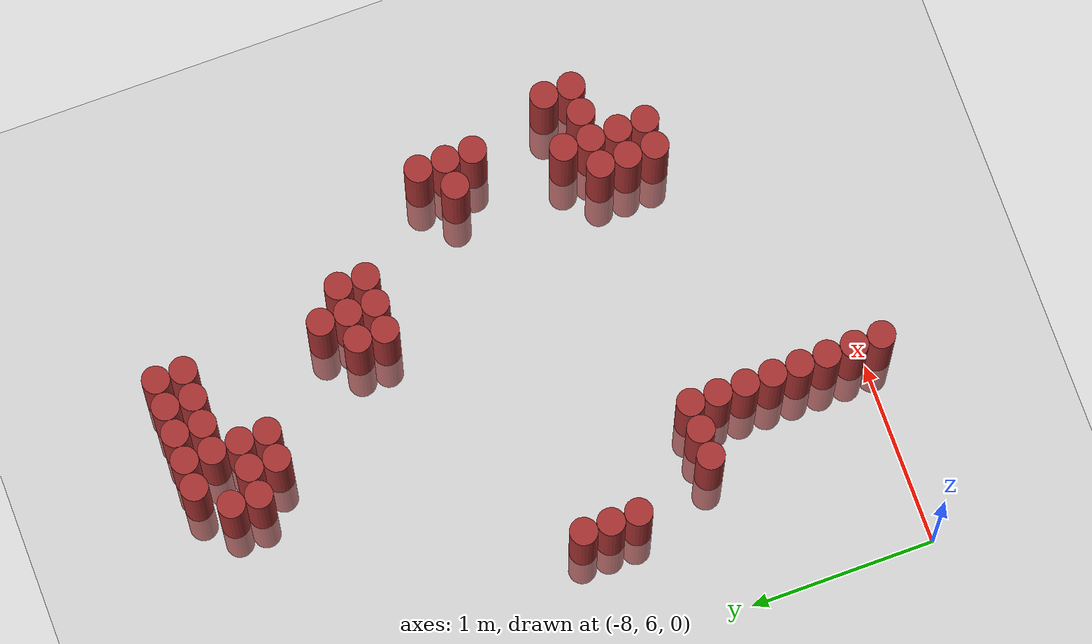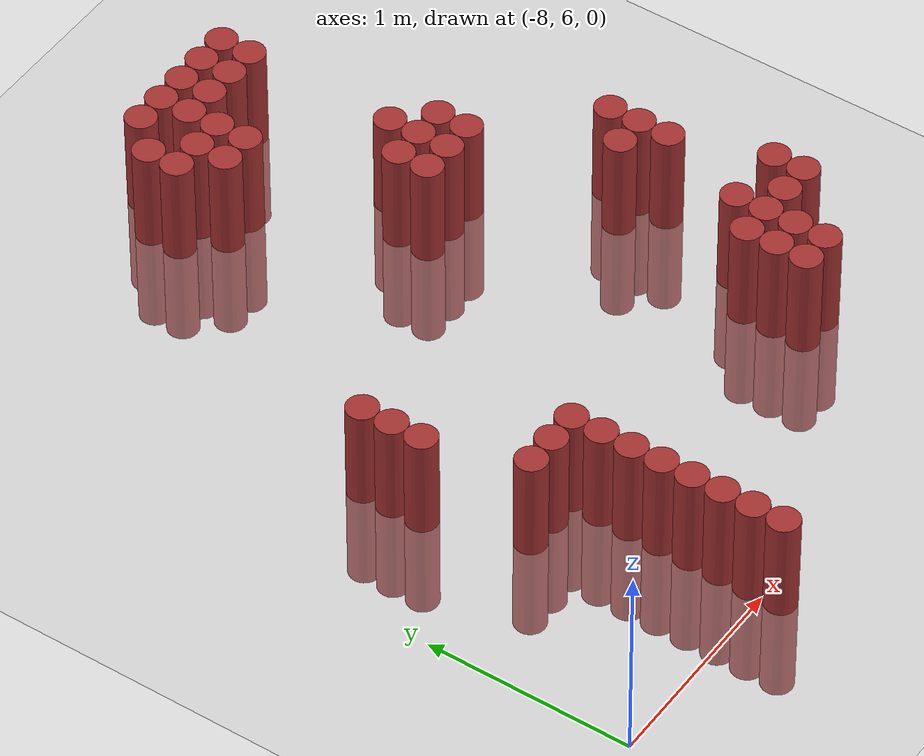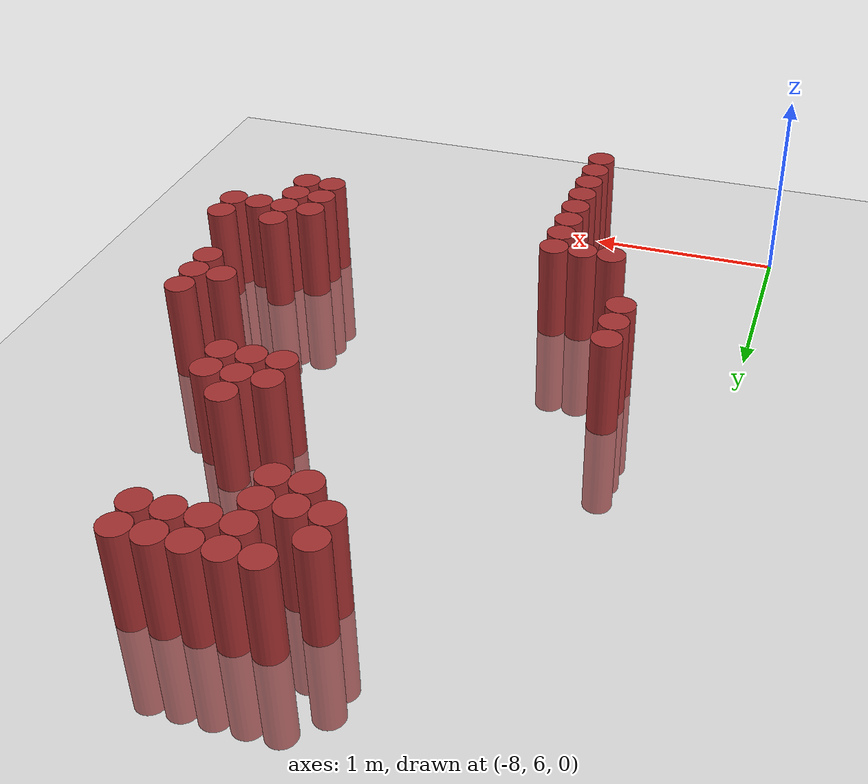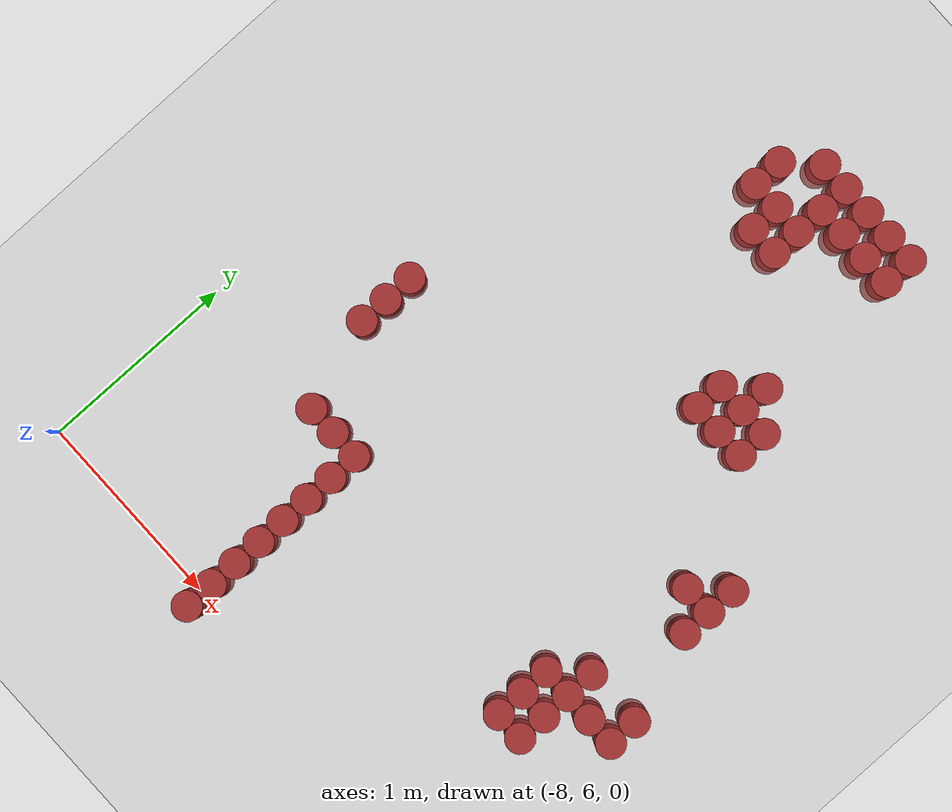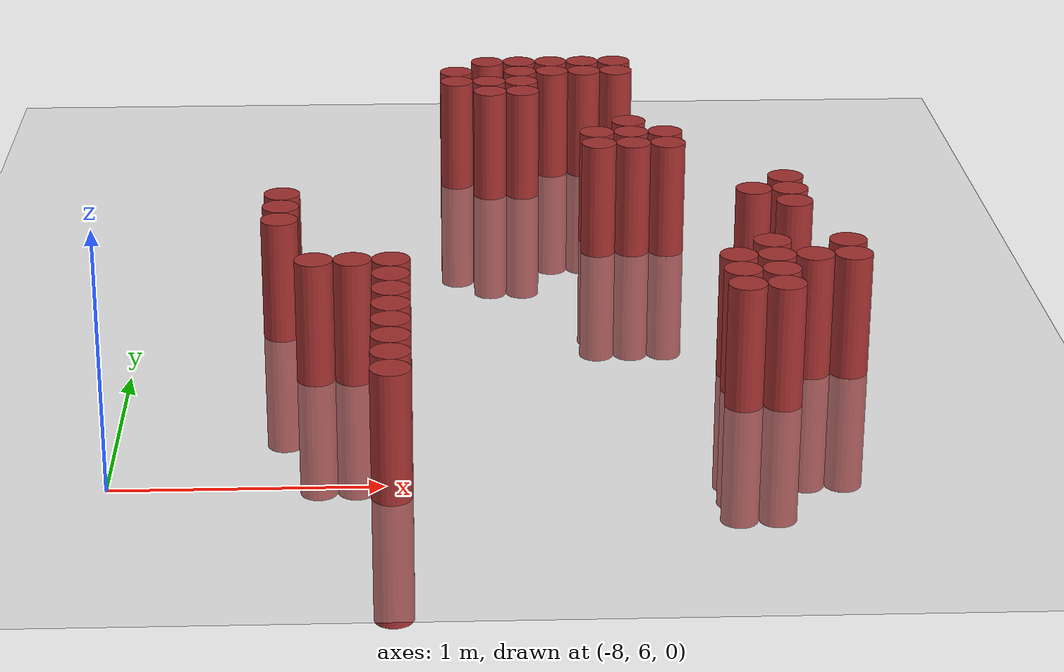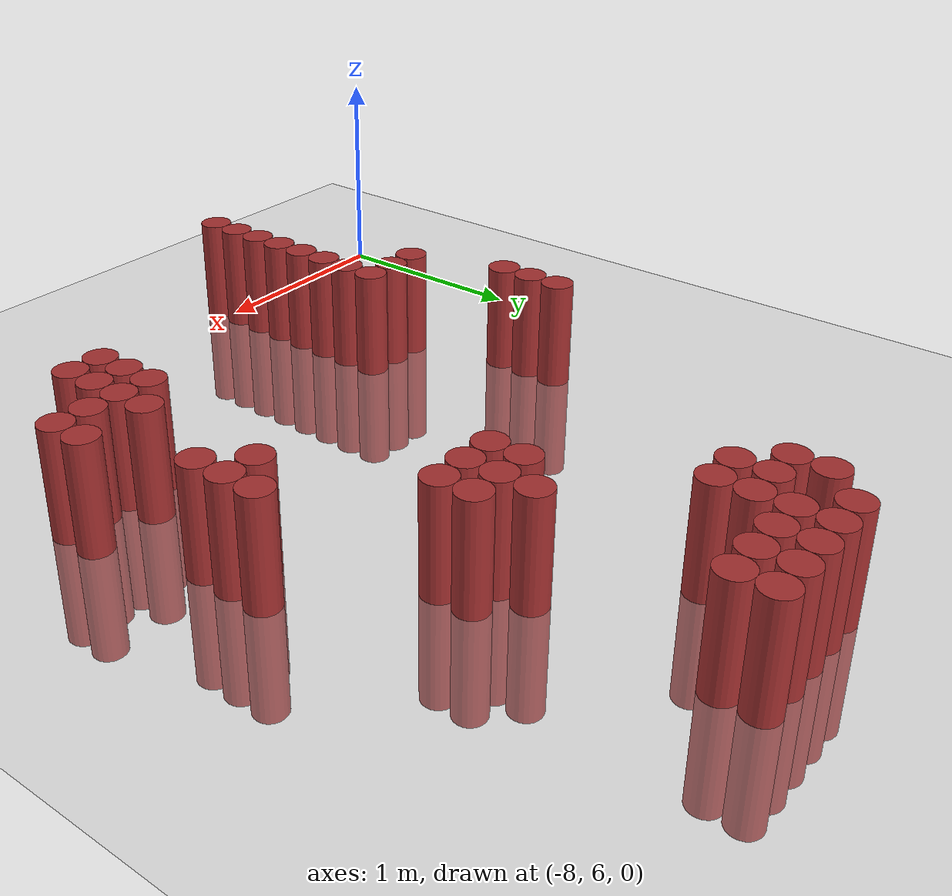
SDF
<sdf version="1.6">
 <world name="default">
  <model name="ground_plane">
   <static>1</static>
   <link name="link">
    <collision name="collision">
     <geometry><plane><normal>0 0 1</normal><size>100 100</size></plane></geometry>
     <surface><friction><ode><mu>100</mu><mu2>50</mu2></ode></friction></surface>
    </collision>
    <visual name="visual">
     <cast_shadows>0</cast_shadows>
     <geometry><plane><normal>0 0 1</normal><size>100 100</size></plane></geometry>
     <material>
      <script><uri>file://media/materials/scripts/gazebo.material</uri><name>Gazebo/Grey</name></script>
     </material>
    </visual>
   </link>
  </model>
  <model name="unit_cylinder_189">
   <static>1</static>
   <pose>-7.425000 7.425000 0.000000 0.000000 0.000000 0.000000</pose>
   <link name="link">
    <inertial>
     <mass>1</mass>
     <inertia><ixx>0.145833</ixx><ixy>0</ixy><ixz>0</ixz><iyy>0.145833</iyy><iyz>0</iyz><izz>0.125</izz></inertia>
    </inertial>
    <collision name="collision">
     <geometry><cylinder><radius>0.075000</radius><length>1</length></cylinder></geometry>
    </collision>
    <visual name="visual">
     <geometry><cylinder><radius>0.075000</radius><length>1</length></cylinder></geometry>
     <material>
      <ambient>0.648000 0.192000 0.192000 1</ambient>
      <diffuse>0.648000 0.192000 0.192000 1</diffuse>
     </material>
     <material>
      <script><name>Gazebo/Grey</name><uri>file://media/materials/scripts/gazebo.material</uri></script>
     </material>
    </visual>
   </link>
  </model>
  <model name="unit_cylinder_190">
   <static>1</static>
   <pose>-7.425000 7.575000 0.000000 0.000000 0.000000 0.000000</pose>
   <link name="link">
    <inertial>
     <mass>1</mass>
     <inertia><ixx>0.145833</ixx><ixy>0</ixy><ixz>0</ixz><iyy>0.145833</iyy><iyz>0</iyz><izz>0.125</izz></inertia>
    </inertial>
    <collision name="collision">
     <geometry><cylinder><radius>0.075000</radius><length>1</length></cylinder></geometry>
    </collision>
    <visual name="visual">
     <geometry><cylinder><radius>0.075000</radius><length>1</length></cylinder></geometry>
     <material>
      <ambient>0.648000 0.192000 0.192000 1</ambient>
      <diffuse>0.648000 0.192000 0.192000 1</diffuse>
     </material>
     <material>
      <script><name>Gazebo/Grey</name><uri>file://media/materials/scripts/gazebo.material</uri></script>
     </material>
    </visual>
   </link>
  </model>
  <model name="unit_cylinder_191">
   <static>1</static>
   <pose>-7.425000 7.725000 0.000000 0.000000 0.000000 0.000000</pose>
   <link name="link">
    <inertial>
     <mass>1</mass>
     <inertia><ixx>0.145833</ixx><ixy>0</ixy><ixz>0</ixz><iyy>0.145833</iyy><iyz>0</iyz><izz>0.125</izz></inertia>
    </inertial>
    <collision name="collision">
     <geometry><cylinder><radius>0.075000</radius><length>1</length></cylinder></geometry>
    </collision>
    <visual name="visual">
     <geometry><cylinder><radius>0.075000</radius><length>1</length></cylinder></geometry>
     <material>
      <ambient>0.648000 0.192000 0.192000 1</ambient>
      <diffuse>0.648000 0.192000 0.192000 1</diffuse>
     </material>
     <material>
      <script><name>Gazebo/Grey</name><uri>file://media/materials/scripts/gazebo.material</uri></script>
     </material>
    </visual>
   </link>
  </model>
  <model name="unit_cylinder_193">
   <static>1</static>
   <pose>-7.275000 6.975000 0.000000 0.000000 0.000000 0.000000</pose>
   <link name="link">
    <inertial>
     <mass>1</mass>
     <inertia><ixx>0.145833</ixx><ixy>0</ixy><ixz>0</ixz><iyy>0.145833</iyy><iyz>0</iyz><izz>0.125</izz></inertia>
    </inertial>
    <collision name="collision">
     <geometry><cylinder><radius>0.075000</radius><length>1</length></cylinder></geometry>
    </collision>
    <visual name="visual">
     <geometry><cylinder><radius>0.075000</radius><length>1</length></cylinder></geometry>
     <material>
      <ambient>0.648000 0.192000 0.192000 1</ambient>
      <diffuse>0.648000 0.192000 0.192000 1</diffuse>
     </material>
     <material>
      <script><name>Gazebo/Grey</name><uri>file://media/materials/scripts/gazebo.material</uri></script>
     </material>
    </visual>
   </link>
  </model>
  <model name="unit_cylinder_195">
   <static>1</static>
   <pose>-7.125000 6.975000 0.000000 0.000000 0.000000 0.000000</pose>
   <link name="link">
    <inertial>
     <mass>1</mass>
     <inertia><ixx>0.145833</ixx><ixy>0</ixy><ixz>0</ixz><iyy>0.145833</iyy><iyz>0</iyz><izz>0.125</izz></inertia>
    </inertial>
    <collision name="collision">
     <geometry><cylinder><radius>0.075000</radius><length>1</length></cylinder></geometry>
    </collision>
    <visual name="visual">
     <geometry><cylinder><radius>0.075000</radius><length>1</length></cylinder></geometry>
     <material>
      <ambient>0.648000 0.192000 0.192000 1</ambient>
      <diffuse>0.648000 0.192000 0.192000 1</diffuse>
     </material>
     <material>
      <script><name>Gazebo/Grey</name><uri>file://media/materials/scripts/gazebo.material</uri></script>
     </material>
    </visual>
   </link>
  </model>
  <model name="unit_cylinder_201">
   <static>1</static>
   <pose>-6.975000 5.925000 0.000000 0.000000 0.000000 0.000000</pose>
   <link name="link">
    <inertial>
     <mass>1</mass>
     <inertia><ixx>0.145833</ixx><ixy>0</ixy><ixz>0</ixz><iyy>0.145833</iyy><iyz>0</iyz><izz>0.125</izz></inertia>
    </inertial>
    <collision name="collision">
     <geometry><cylinder><radius>0.075000</radius><length>1</length></cylinder></geometry>
    </collision>
    <visual name="visual">
     <geometry><cylinder><radius>0.075000</radius><length>1</length></cylinder></geometry>
     <material>
      <ambient>0.648000 0.192000 0.192000 1</ambient>
      <diffuse>0.648000 0.192000 0.192000 1</diffuse>
     </material>
     <material>
      <script><name>Gazebo/Grey</name><uri>file://media/materials/scripts/gazebo.material</uri></script>
     </material>
    </visual>
   </link>
  </model>
  <model name="unit_cylinder_202">
   <static>1</static>
   <pose>-6.975000 6.075000 0.000000 0.000000 0.000000 0.000000</pose>
   <link name="link">
    <inertial>
     <mass>1</mass>
     <inertia><ixx>0.145833</ixx><ixy>0</ixy><ixz>0</ixz><iyy>0.145833</iyy><iyz>0</iyz><izz>0.125</izz></inertia>
    </inertial>
    <collision name="collision">
     <geometry><cylinder><radius>0.075000</radius><length>1</length></cylinder></geometry>
    </collision>
    <visual name="visual">
     <geometry><cylinder><radius>0.075000</radius><length>1</length></cylinder></geometry>
     <material>
      <ambient>0.648000 0.192000 0.192000 1</ambient>
      <diffuse>0.648000 0.192000 0.192000 1</diffuse>
     </material>
     <material>
      <script><name>Gazebo/Grey</name><uri>file://media/materials/scripts/gazebo.material</uri></script>
     </material>
    </visual>
   </link>
  </model>
  <model name="unit_cylinder_203">
   <static>1</static>
   <pose>-6.975000 6.225000 0.000000 0.000000 0.000000 0.000000</pose>
   <link name="link">
    <inertial>
     <mass>1</mass>
     <inertia><ixx>0.145833</ixx><ixy>0</ixy><ixz>0</ixz><iyy>0.145833</iyy><iyz>0</iyz><izz>0.125</izz></inertia>
    </inertial>
    <collision name="collision">
     <geometry><cylinder><radius>0.075000</radius><length>1</length></cylinder></geometry>
    </collision>
    <visual name="visual">
     <geometry><cylinder><radius>0.075000</radius><length>1</length></cylinder></geometry>
     <material>
      <ambient>0.648000 0.192000 0.192000 1</ambient>
      <diffuse>0.648000 0.192000 0.192000 1</diffuse>
     </material>
     <material>
      <script><name>Gazebo/Grey</name><uri>file://media/materials/scripts/gazebo.material</uri></script>
     </material>
    </visual>
   </link>
  </model>
  <model name="unit_cylinder_204">
   <static>1</static>
   <pose>-6.975000 6.375000 0.000000 0.000000 0.000000 0.000000</pose>
   <link name="link">
    <inertial>
     <mass>1</mass>
     <inertia><ixx>0.145833</ixx><ixy>0</ixy><ixz>0</ixz><iyy>0.145833</iyy><iyz>0</iyz><izz>0.125</izz></inertia>
    </inertial>
    <collision name="collision">
     <geometry><cylinder><radius>0.075000</radius><length>1</length></cylinder></geometry>
    </collision>
    <visual name="visual">
     <geometry><cylinder><radius>0.075000</radius><length>1</length></cylinder></geometry>
     <material>
      <ambient>0.648000 0.192000 0.192000 1</ambient>
      <diffuse>0.648000 0.192000 0.192000 1</diffuse>
     </material>
     <material>
      <script><name>Gazebo/Grey</name><uri>file://media/materials/scripts/gazebo.material</uri></script>
     </material>
    </visual>
   </link>
  </model>
  <model name="unit_cylinder_205">
   <static>1</static>
   <pose>-6.975000 6.525000 0.000000 0.000000 0.000000 0.000000</pose>
   <link name="link">
    <inertial>
     <mass>1</mass>
     <inertia><ixx>0.145833</ixx><ixy>0</ixy><ixz>0</ixz><iyy>0.145833</iyy><iyz>0</iyz><izz>0.125</izz></inertia>
    </inertial>
    <collision name="collision">
     <geometry><cylinder><radius>0.075000</radius><length>1</length></cylinder></geometry>
    </collision>
    <visual name="visual">
     <geometry><cylinder><radius>0.075000</radius><length>1</length></cylinder></geometry>
     <material>
      <ambient>0.648000 0.192000 0.192000 1</ambient>
      <diffuse>0.648000 0.192000 0.192000 1</diffuse>
     </material>
     <material>
      <script><name>Gazebo/Grey</name><uri>file://media/materials/scripts/gazebo.material</uri></script>
     </material>
    </visual>
   </link>
  </model>
  <model name="unit_cylinder_206">
   <static>1</static>
   <pose>-6.975000 6.675000 0.000000 0.000000 0.000000 0.000000</pose>
   <link name="link">
    <inertial>
     <mass>1</mass>
     <inertia><ixx>0.145833</ixx><ixy>0</ixy><ixz>0</ixz><iyy>0.145833</iyy><iyz>0</iyz><izz>0.125</izz></inertia>
    </inertial>
    <collision name="collision">
     <geometry><cylinder><radius>0.075000</radius><length>1</length></cylinder></geometry>
    </collision>
    <visual name="visual">
     <geometry><cylinder><radius>0.075000</radius><length>1</length></cylinder></geometry>
     <material>
      <ambient>0.648000 0.192000 0.192000 1</ambient>
      <diffuse>0.648000 0.192000 0.192000 1</diffuse>
     </material>
     <material>
      <script><name>Gazebo/Grey</name><uri>file://media/materials/scripts/gazebo.material</uri></script>
     </material>
    </visual>
   </link>
  </model>
  <model name="unit_cylinder_207">
   <static>1</static>
   <pose>-6.975000 6.825000 0.000000 0.000000 0.000000 0.000000</pose>
   <link name="link">
    <inertial>
     <mass>1</mass>
     <inertia><ixx>0.145833</ixx><ixy>0</ixy><ixz>0</ixz><iyy>0.145833</iyy><iyz>0</iyz><izz>0.125</izz></inertia>
    </inertial>
    <collision name="collision">
     <geometry><cylinder><radius>0.075000</radius><length>1</length></cylinder></geometry>
    </collision>
    <visual name="visual">
     <geometry><cylinder><radius>0.075000</radius><length>1</length></cylinder></geometry>
     <material>
      <ambient>0.648000 0.192000 0.192000 1</ambient>
      <diffuse>0.648000 0.192000 0.192000 1</diffuse>
     </material>
     <material>
      <script><name>Gazebo/Grey</name><uri>file://media/materials/scripts/gazebo.material</uri></script>
     </material>
    </visual>
   </link>
  </model>
  <model name="unit_cylinder_208">
   <static>1</static>
   <pose>-6.975000 6.975000 0.000000 0.000000 0.000000 0.000000</pose>
   <link name="link">
    <inertial>
     <mass>1</mass>
     <inertia><ixx>0.145833</ixx><ixy>0</ixy><ixz>0</ixz><iyy>0.145833</iyy><iyz>0</iyz><izz>0.125</izz></inertia>
    </inertial>
    <collision name="collision">
     <geometry><cylinder><radius>0.075000</radius><length>1</length></cylinder></geometry>
    </collision>
    <visual name="visual">
     <geometry><cylinder><radius>0.075000</radius><length>1</length></cylinder></geometry>
     <material>
      <ambient>0.648000 0.192000 0.192000 1</ambient>
      <diffuse>0.648000 0.192000 0.192000 1</diffuse>
     </material>
     <material>
      <script><name>Gazebo/Grey</name><uri>file://media/materials/scripts/gazebo.material</uri></script>
     </material>
    </visual>
   </link>
  </model>
  <model name="unit_cylinder_213">
   <static>1</static>
   <pose>-6.675000 9.225000 0.000000 0.000000 0.000000 0.000000</pose>
   <link name="link">
    <inertial>
     <mass>1</mass>
     <inertia><ixx>0.145833</ixx><ixy>0</ixy><ixz>0</ixz><iyy>0.145833</iyy><iyz>0</iyz><izz>0.125</izz></inertia>
    </inertial>
    <collision name="collision">
     <geometry><cylinder><radius>0.075000</radius><length>1</length></cylinder></geometry>
    </collision>
    <visual name="visual">
     <geometry><cylinder><radius>0.075000</radius><length>1</length></cylinder></geometry>
     <material>
      <ambient>0.648000 0.192000 0.192000 1</ambient>
      <diffuse>0.648000 0.192000 0.192000 1</diffuse>
     </material>
     <material>
      <script><name>Gazebo/Grey</name><uri>file://media/materials/scripts/gazebo.material</uri></script>
     </material>
    </visual>
   </link>
  </model>
  <model name="unit_cylinder_214">
   <static>1</static>
   <pose>-6.675000 9.375000 0.000000 0.000000 0.000000 0.000000</pose>
   <link name="link">
    <inertial>
     <mass>1</mass>
     <inertia><ixx>0.145833</ixx><ixy>0</ixy><ixz>0</ixz><iyy>0.145833</iyy><iyz>0</iyz><izz>0.125</izz></inertia>
    </inertial>
    <collision name="collision">
     <geometry><cylinder><radius>0.075000</radius><length>1</length></cylinder></geometry>
    </collision>
    <visual name="visual">
     <geometry><cylinder><radius>0.075000</radius><length>1</length></cylinder></geometry>
     <material>
      <ambient>0.648000 0.192000 0.192000 1</ambient>
      <diffuse>0.648000 0.192000 0.192000 1</diffuse>
     </material>
     <material>
      <script><name>Gazebo/Grey</name><uri>file://media/materials/scripts/gazebo.material</uri></script>
     </material>
    </visual>
   </link>
  </model>
  <model name="unit_cylinder_217">
   <static>1</static>
   <pose>-6.525000 9.075000 0.000000 0.000000 0.000000 0.000000</pose>
   <link name="link">
    <inertial>
     <mass>1</mass>
     <inertia><ixx>0.145833</ixx><ixy>0</ixy><ixz>0</ixz><iyy>0.145833</iyy><iyz>0</iyz><izz>0.125</izz></inertia>
    </inertial>
    <collision name="collision">
     <geometry><cylinder><radius>0.075000</radius><length>1</length></cylinder></geometry>
    </collision>
    <visual name="visual">
     <geometry><cylinder><radius>0.075000</radius><length>1</length></cylinder></geometry>
     <material>
      <ambient>0.648000 0.192000 0.192000 1</ambient>
      <diffuse>0.648000 0.192000 0.192000 1</diffuse>
     </material>
     <material>
      <script><name>Gazebo/Grey</name><uri>file://media/materials/scripts/gazebo.material</uri></script>
     </material>
    </visual>
   </link>
  </model>
  <model name="unit_cylinder_218">
   <static>1</static>
   <pose>-6.525000 9.225000 0.000000 0.000000 0.000000 0.000000</pose>
   <link name="link">
    <inertial>
     <mass>1</mass>
     <inertia><ixx>0.145833</ixx><ixy>0</ixy><ixz>0</ixz><iyy>0.145833</iyy><iyz>0</iyz><izz>0.125</izz></inertia>
    </inertial>
    <collision name="collision">
     <geometry><cylinder><radius>0.075000</radius><length>1</length></cylinder></geometry>
    </collision>
    <visual name="visual">
     <geometry><cylinder><radius>0.075000</radius><length>1</length></cylinder></geometry>
     <material>
      <ambient>0.648000 0.192000 0.192000 1</ambient>
      <diffuse>0.648000 0.192000 0.192000 1</diffuse>
     </material>
     <material>
      <script><name>Gazebo/Grey</name><uri>file://media/materials/scripts/gazebo.material</uri></script>
     </material>
    </visual>
   </link>
  </model>
  <model name="unit_cylinder_219">
   <static>1</static>
   <pose>-6.525000 9.525000 0.000000 0.000000 0.000000 0.000000</pose>
   <link name="link">
    <inertial>
     <mass>1</mass>
     <inertia><ixx>0.145833</ixx><ixy>0</ixy><ixz>0</ixz><iyy>0.145833</iyy><iyz>0</iyz><izz>0.125</izz></inertia>
    </inertial>
    <collision name="collision">
     <geometry><cylinder><radius>0.075000</radius><length>1</length></cylinder></geometry>
    </collision>
    <visual name="visual">
     <geometry><cylinder><radius>0.075000</radius><length>1</length></cylinder></geometry>
     <material>
      <ambient>0.648000 0.192000 0.192000 1</ambient>
      <diffuse>0.648000 0.192000 0.192000 1</diffuse>
     </material>
     <material>
      <script><name>Gazebo/Grey</name><uri>file://media/materials/scripts/gazebo.material</uri></script>
     </material>
    </visual>
   </link>
  </model>
  <model name="unit_cylinder_222">
   <static>1</static>
   <pose>-6.375000 9.075000 0.000000 0.000000 0.000000 0.000000</pose>
   <link name="link">
    <inertial>
     <mass>1</mass>
     <inertia><ixx>0.145833</ixx><ixy>0</ixy><ixz>0</ixz><iyy>0.145833</iyy><iyz>0</iyz><izz>0.125</izz></inertia>
    </inertial>
    <collision name="collision">
     <geometry><cylinder><radius>0.075000</radius><length>1</length></cylinder></geometry>
    </collision>
    <visual name="visual">
     <geometry><cylinder><radius>0.075000</radius><length>1</length></cylinder></geometry>
     <material>
      <ambient>0.648000 0.192000 0.192000 1</ambient>
      <diffuse>0.648000 0.192000 0.192000 1</diffuse>
     </material>
     <material>
      <script><name>Gazebo/Grey</name><uri>file://media/materials/scripts/gazebo.material</uri></script>
     </material>
    </visual>
   </link>
  </model>
  <model name="unit_cylinder_223">
   <static>1</static>
   <pose>-6.375000 9.225000 0.000000 0.000000 0.000000 0.000000</pose>
   <link name="link">
    <inertial>
     <mass>1</mass>
     <inertia><ixx>0.145833</ixx><ixy>0</ixy><ixz>0</ixz><iyy>0.145833</iyy><iyz>0</iyz><izz>0.125</izz></inertia>
    </inertial>
    <collision name="collision">
     <geometry><cylinder><radius>0.075000</radius><length>1</length></cylinder></geometry>
    </collision>
    <visual name="visual">
     <geometry><cylinder><radius>0.075000</radius><length>1</length></cylinder></geometry>
     <material>
      <ambient>0.648000 0.192000 0.192000 1</ambient>
      <diffuse>0.648000 0.192000 0.192000 1</diffuse>
     </material>
     <material>
      <script><name>Gazebo/Grey</name><uri>file://media/materials/scripts/gazebo.material</uri></script>
     </material>
    </visual>
   </link>
  </model>
  <model name="unit_cylinder_224">
   <static>1</static>
   <pose>-6.375000 9.375000 0.000000 0.000000 0.000000 0.000000</pose>
   <link name="link">
    <inertial>
     <mass>1</mass>
     <inertia><ixx>0.145833</ixx><ixy>0</ixy><ixz>0</ixz><iyy>0.145833</iyy><iyz>0</iyz><izz>0.125</izz></inertia>
    </inertial>
    <collision name="collision">
     <geometry><cylinder><radius>0.075000</radius><length>1</length></cylinder></geometry>
    </collision>
    <visual name="visual">
     <geometry><cylinder><radius>0.075000</radius><length>1</length></cylinder></geometry>
     <material>
      <ambient>0.648000 0.192000 0.192000 1</ambient>
      <diffuse>0.648000 0.192000 0.192000 1</diffuse>
     </material>
     <material>
      <script><name>Gazebo/Grey</name><uri>file://media/materials/scripts/gazebo.material</uri></script>
     </material>
    </visual>
   </link>
  </model>
  <model name="unit_cylinder_225">
   <static>1</static>
   <pose>-6.375000 9.525000 0.000000 0.000000 0.000000 0.000000</pose>
   <link name="link">
    <inertial>
     <mass>1</mass>
     <inertia><ixx>0.145833</ixx><ixy>0</ixy><ixz>0</ixz><iyy>0.145833</iyy><iyz>0</iyz><izz>0.125</izz></inertia>
    </inertial>
    <collision name="collision">
     <geometry><cylinder><radius>0.075000</radius><length>1</length></cylinder></geometry>
    </collision>
    <visual name="visual">
     <geometry><cylinder><radius>0.075000</radius><length>1</length></cylinder></geometry>
     <material>
      <ambient>0.648000 0.192000 0.192000 1</ambient>
      <diffuse>0.648000 0.192000 0.192000 1</diffuse>
     </material>
     <material>
      <script><name>Gazebo/Grey</name><uri>file://media/materials/scripts/gazebo.material</uri></script>
     </material>
    </visual>
   </link>
  </model>
  <model name="unit_cylinder_228">
   <static>1</static>
   <pose>-6.225000 9.375000 0.000000 0.000000 0.000000 0.000000</pose>
   <link name="link">
    <inertial>
     <mass>1</mass>
     <inertia><ixx>0.145833</ixx><ixy>0</ixy><ixz>0</ixz><iyy>0.145833</iyy><iyz>0</iyz><izz>0.125</izz></inertia>
    </inertial>
    <collision name="collision">
     <geometry><cylinder><radius>0.075000</radius><length>1</length></cylinder></geometry>
    </collision>
    <visual name="visual">
     <geometry><cylinder><radius>0.075000</radius><length>1</length></cylinder></geometry>
     <material>
      <ambient>0.648000 0.192000 0.192000 1</ambient>
      <diffuse>0.648000 0.192000 0.192000 1</diffuse>
     </material>
     <material>
      <script><name>Gazebo/Grey</name><uri>file://media/materials/scripts/gazebo.material</uri></script>
     </material>
    </visual>
   </link>
  </model>
  <model name="unit_cylinder_229">
   <static>1</static>
   <pose>-6.225000 9.525000 0.000000 0.000000 0.000000 0.000000</pose>
   <link name="link">
    <inertial>
     <mass>1</mass>
     <inertia><ixx>0.145833</ixx><ixy>0</ixy><ixz>0</ixz><iyy>0.145833</iyy><iyz>0</iyz><izz>0.125</izz></inertia>
    </inertial>
    <collision name="collision">
     <geometry><cylinder><radius>0.075000</radius><length>1</length></cylinder></geometry>
    </collision>
    <visual name="visual">
     <geometry><cylinder><radius>0.075000</radius><length>1</length></cylinder></geometry>
     <material>
      <ambient>0.648000 0.192000 0.192000 1</ambient>
      <diffuse>0.648000 0.192000 0.192000 1</diffuse>
     </material>
     <material>
      <script><name>Gazebo/Grey</name><uri>file://media/materials/scripts/gazebo.material</uri></script>
     </material>
    </visual>
   </link>
  </model>
  <model name="unit_cylinder_232">
   <static>1</static>
   <pose>-6.075000 8.325000 0.000000 0.000000 0.000000 0.000000</pose>
   <link name="link">
    <inertial>
     <mass>1</mass>
     <inertia><ixx>0.145833</ixx><ixy>0</ixy><ixz>0</ixz><iyy>0.145833</iyy><iyz>0</iyz><izz>0.125</izz></inertia>
    </inertial>
    <collision name="collision">
     <geometry><cylinder><radius>0.075000</radius><length>1</length></cylinder></geometry>
    </collision>
    <visual name="visual">
     <geometry><cylinder><radius>0.075000</radius><length>1</length></cylinder></geometry>
     <material>
      <ambient>0.648000 0.192000 0.192000 1</ambient>
      <diffuse>0.648000 0.192000 0.192000 1</diffuse>
     </material>
     <material>
      <script><name>Gazebo/Grey</name><uri>file://media/materials/scripts/gazebo.material</uri></script>
     </material>
    </visual>
   </link>
  </model>
  <model name="unit_cylinder_233">
   <static>1</static>
   <pose>-6.075000 8.475000 0.000000 0.000000 0.000000 0.000000</pose>
   <link name="link">
    <inertial>
     <mass>1</mass>
     <inertia><ixx>0.145833</ixx><ixy>0</ixy><ixz>0</ixz><iyy>0.145833</iyy><iyz>0</iyz><izz>0.125</izz></inertia>
    </inertial>
    <collision name="collision">
     <geometry><cylinder><radius>0.075000</radius><length>1</length></cylinder></geometry>
    </collision>
    <visual name="visual">
     <geometry><cylinder><radius>0.075000</radius><length>1</length></cylinder></geometry>
     <material>
      <ambient>0.648000 0.192000 0.192000 1</ambient>
      <diffuse>0.648000 0.192000 0.192000 1</diffuse>
     </material>
     <material>
      <script><name>Gazebo/Grey</name><uri>file://media/materials/scripts/gazebo.material</uri></script>
     </material>
    </visual>
   </link>
  </model>
  <model name="unit_cylinder_234">
   <static>1</static>
   <pose>-6.075000 9.375000 0.000000 0.000000 0.000000 0.000000</pose>
   <link name="link">
    <inertial>
     <mass>1</mass>
     <inertia><ixx>0.145833</ixx><ixy>0</ixy><ixz>0</ixz><iyy>0.145833</iyy><iyz>0</iyz><izz>0.125</izz></inertia>
    </inertial>
    <collision name="collision">
     <geometry><cylinder><radius>0.075000</radius><length>1</length></cylinder></geometry>
    </collision>
    <visual name="visual">
     <geometry><cylinder><radius>0.075000</radius><length>1</length></cylinder></geometry>
     <material>
      <ambient>0.648000 0.192000 0.192000 1</ambient>
      <diffuse>0.648000 0.192000 0.192000 1</diffuse>
     </material>
     <material>
      <script><name>Gazebo/Grey</name><uri>file://media/materials/scripts/gazebo.material</uri></script>
     </material>
    </visual>
   </link>
  </model>
  <model name="unit_cylinder_235">
   <static>1</static>
   <pose>-6.075000 9.525000 0.000000 0.000000 0.000000 0.000000</pose>
   <link name="link">
    <inertial>
     <mass>1</mass>
     <inertia><ixx>0.145833</ixx><ixy>0</ixy><ixz>0</ixz><iyy>0.145833</iyy><iyz>0</iyz><izz>0.125</izz></inertia>
    </inertial>
    <collision name="collision">
     <geometry><cylinder><radius>0.075000</radius><length>1</length></cylinder></geometry>
    </collision>
    <visual name="visual">
     <geometry><cylinder><radius>0.075000</radius><length>1</length></cylinder></geometry>
     <material>
      <ambient>0.648000 0.192000 0.192000 1</ambient>
      <diffuse>0.648000 0.192000 0.192000 1</diffuse>
     </material>
     <material>
      <script><name>Gazebo/Grey</name><uri>file://media/materials/scripts/gazebo.material</uri></script>
     </material>
    </visual>
   </link>
  </model>
  <model name="unit_cylinder_236">
   <static>1</static>
   <pose>-5.925000 8.325000 0.000000 0.000000 0.000000 0.000000</pose>
   <link name="link">
    <inertial>
     <mass>1</mass>
     <inertia><ixx>0.145833</ixx><ixy>0</ixy><ixz>0</ixz><iyy>0.145833</iyy><iyz>0</iyz><izz>0.125</izz></inertia>
    </inertial>
    <collision name="collision">
     <geometry><cylinder><radius>0.075000</radius><length>1</length></cylinder></geometry>
    </collision>
    <visual name="visual">
     <geometry><cylinder><radius>0.075000</radius><length>1</length></cylinder></geometry>
     <material>
      <ambient>0.648000 0.192000 0.192000 1</ambient>
      <diffuse>0.648000 0.192000 0.192000 1</diffuse>
     </material>
     <material>
      <script><name>Gazebo/Grey</name><uri>file://media/materials/scripts/gazebo.material</uri></script>
     </material>
    </visual>
   </link>
  </model>
  <model name="unit_cylinder_237">
   <static>1</static>
   <pose>-5.925000 8.475000 0.000000 0.000000 0.000000 0.000000</pose>
   <link name="link">
    <inertial>
     <mass>1</mass>
     <inertia><ixx>0.145833</ixx><ixy>0</ixy><ixz>0</ixz><iyy>0.145833</iyy><iyz>0</iyz><izz>0.125</izz></inertia>
    </inertial>
    <collision name="collision">
     <geometry><cylinder><radius>0.075000</radius><length>1</length></cylinder></geometry>
    </collision>
    <visual name="visual">
     <geometry><cylinder><radius>0.075000</radius><length>1</length></cylinder></geometry>
     <material>
      <ambient>0.648000 0.192000 0.192000 1</ambient>
      <diffuse>0.648000 0.192000 0.192000 1</diffuse>
     </material>
     <material>
      <script><name>Gazebo/Grey</name><uri>file://media/materials/scripts/gazebo.material</uri></script>
     </material>
    </visual>
   </link>
  </model>
  <model name="unit_cylinder_238">
   <static>1</static>
   <pose>-5.925000 8.625000 0.000000 0.000000 0.000000 0.000000</pose>
   <link name="link">
    <inertial>
     <mass>1</mass>
     <inertia><ixx>0.145833</ixx><ixy>0</ixy><ixz>0</ixz><iyy>0.145833</iyy><iyz>0</iyz><izz>0.125</izz></inertia>
    </inertial>
    <collision name="collision">
     <geometry><cylinder><radius>0.075000</radius><length>1</length></cylinder></geometry>
    </collision>
    <visual name="visual">
     <geometry><cylinder><radius>0.075000</radius><length>1</length></cylinder></geometry>
     <material>
      <ambient>0.648000 0.192000 0.192000 1</ambient>
      <diffuse>0.648000 0.192000 0.192000 1</diffuse>
     </material>
     <material>
      <script><name>Gazebo/Grey</name><uri>file://media/materials/scripts/gazebo.material</uri></script>
     </material>
    </visual>
   </link>
  </model>
  <model name="unit_cylinder_239">
   <static>1</static>
   <pose>-5.925000 9.375000 0.000000 0.000000 0.000000 0.000000</pose>
   <link name="link">
    <inertial>
     <mass>1</mass>
     <inertia><ixx>0.145833</ixx><ixy>0</ixy><ixz>0</ixz><iyy>0.145833</iyy><iyz>0</iyz><izz>0.125</izz></inertia>
    </inertial>
    <collision name="collision">
     <geometry><cylinder><radius>0.075000</radius><length>1</length></cylinder></geometry>
    </collision>
    <visual name="visual">
     <geometry><cylinder><radius>0.075000</radius><length>1</length></cylinder></geometry>
     <material>
      <ambient>0.648000 0.192000 0.192000 1</ambient>
      <diffuse>0.648000 0.192000 0.192000 1</diffuse>
     </material>
     <material>
      <script><name>Gazebo/Grey</name><uri>file://media/materials/scripts/gazebo.material</uri></script>
     </material>
    </visual>
   </link>
  </model>
  <model name="unit_cylinder_240">
   <static>1</static>
   <pose>-5.925000 9.525000 0.000000 0.000000 0.000000 0.000000</pose>
   <link name="link">
    <inertial>
     <mass>1</mass>
     <inertia><ixx>0.145833</ixx><ixy>0</ixy><ixz>0</ixz><iyy>0.145833</iyy><iyz>0</iyz><izz>0.125</izz></inertia>
    </inertial>
    <collision name="collision">
     <geometry><cylinder><radius>0.075000</radius><length>1</length></cylinder></geometry>
    </collision>
    <visual name="visual">
     <geometry><cylinder><radius>0.075000</radius><length>1</length></cylinder></geometry>
     <material>
      <ambient>0.648000 0.192000 0.192000 1</ambient>
      <diffuse>0.648000 0.192000 0.192000 1</diffuse>
     </material>
     <material>
      <script><name>Gazebo/Grey</name><uri>file://media/materials/scripts/gazebo.material</uri></script>
     </material>
    </visual>
   </link>
  </model>
  <model name="unit_cylinder_241">
   <static>1</static>
   <pose>-5.775000 8.325000 0.000000 0.000000 0.000000 0.000000</pose>
   <link name="link">
    <inertial>
     <mass>1</mass>
     <inertia><ixx>0.145833</ixx><ixy>0</ixy><ixz>0</ixz><iyy>0.145833</iyy><iyz>0</iyz><izz>0.125</izz></inertia>
    </inertial>
    <collision name="collision">
     <geometry><cylinder><radius>0.075000</radius><length>1</length></cylinder></geometry>
    </collision>
    <visual name="visual">
     <geometry><cylinder><radius>0.075000</radius><length>1</length></cylinder></geometry>
     <material>
      <ambient>0.648000 0.192000 0.192000 1</ambient>
      <diffuse>0.648000 0.192000 0.192000 1</diffuse>
     </material>
     <material>
      <script><name>Gazebo/Grey</name><uri>file://media/materials/scripts/gazebo.material</uri></script>
     </material>
    </visual>
   </link>
  </model>
  <model name="unit_cylinder_242">
   <static>1</static>
   <pose>-5.775000 8.475000 0.000000 0.000000 0.000000 0.000000</pose>
   <link name="link">
    <inertial>
     <mass>1</mass>
     <inertia><ixx>0.145833</ixx><ixy>0</ixy><ixz>0</ixz><iyy>0.145833</iyy><iyz>0</iyz><izz>0.125</izz></inertia>
    </inertial>
    <collision name="collision">
     <geometry><cylinder><radius>0.075000</radius><length>1</length></cylinder></geometry>
    </collision>
    <visual name="visual">
     <geometry><cylinder><radius>0.075000</radius><length>1</length></cylinder></geometry>
     <material>
      <ambient>0.648000 0.192000 0.192000 1</ambient>
      <diffuse>0.648000 0.192000 0.192000 1</diffuse>
     </material>
     <material>
      <script><name>Gazebo/Grey</name><uri>file://media/materials/scripts/gazebo.material</uri></script>
     </material>
    </visual>
   </link>
  </model>
  <model name="unit_cylinder_243">
   <static>1</static>
   <pose>-5.625000 6.675000 0.000000 0.000000 0.000000 0.000000</pose>
   <link name="link">
    <inertial>
     <mass>1</mass>
     <inertia><ixx>0.145833</ixx><ixy>0</ixy><ixz>0</ixz><iyy>0.145833</iyy><iyz>0</iyz><izz>0.125</izz></inertia>
    </inertial>
    <collision name="collision">
     <geometry><cylinder><radius>0.075000</radius><length>1</length></cylinder></geometry>
    </collision>
    <visual name="visual">
     <geometry><cylinder><radius>0.075000</radius><length>1</length></cylinder></geometry>
     <material>
      <ambient>0.648000 0.192000 0.192000 1</ambient>
      <diffuse>0.648000 0.192000 0.192000 1</diffuse>
     </material>
     <material>
      <script><name>Gazebo/Grey</name><uri>file://media/materials/scripts/gazebo.material</uri></script>
     </material>
    </visual>
   </link>
  </model>
  <model name="unit_cylinder_244">
   <static>1</static>
   <pose>-5.625000 6.825000 0.000000 0.000000 0.000000 0.000000</pose>
   <link name="link">
    <inertial>
     <mass>1</mass>
     <inertia><ixx>0.145833</ixx><ixy>0</ixy><ixz>0</ixz><iyy>0.145833</iyy><iyz>0</iyz><izz>0.125</izz></inertia>
    </inertial>
    <collision name="collision">
     <geometry><cylinder><radius>0.075000</radius><length>1</length></cylinder></geometry>
    </collision>
    <visual name="visual">
     <geometry><cylinder><radius>0.075000</radius><length>1</length></cylinder></geometry>
     <material>
      <ambient>0.648000 0.192000 0.192000 1</ambient>
      <diffuse>0.648000 0.192000 0.192000 1</diffuse>
     </material>
     <material>
      <script><name>Gazebo/Grey</name><uri>file://media/materials/scripts/gazebo.material</uri></script>
     </material>
    </visual>
   </link>
  </model>
  <model name="unit_cylinder_245">
   <static>1</static>
   <pose>-5.625000 6.975000 0.000000 0.000000 0.000000 0.000000</pose>
   <link name="link">
    <inertial>
     <mass>1</mass>
     <inertia><ixx>0.145833</ixx><ixy>0</ixy><ixz>0</ixz><iyy>0.145833</iyy><iyz>0</iyz><izz>0.125</izz></inertia>
    </inertial>
    <collision name="collision">
     <geometry><cylinder><radius>0.075000</radius><length>1</length></cylinder></geometry>
    </collision>
    <visual name="visual">
     <geometry><cylinder><radius>0.075000</radius><length>1</length></cylinder></geometry>
     <material>
      <ambient>0.648000 0.192000 0.192000 1</ambient>
      <diffuse>0.648000 0.192000 0.192000 1</diffuse>
     </material>
     <material>
      <script><name>Gazebo/Grey</name><uri>file://media/materials/scripts/gazebo.material</uri></script>
     </material>
    </visual>
   </link>
  </model>
  <model name="unit_cylinder_246">
   <static>1</static>
   <pose>-5.475000 6.675000 0.000000 0.000000 0.000000 0.000000</pose>
   <link name="link">
    <inertial>
     <mass>1</mass>
     <inertia><ixx>0.145833</ixx><ixy>0</ixy><ixz>0</ixz><iyy>0.145833</iyy><iyz>0</iyz><izz>0.125</izz></inertia>
    </inertial>
    <collision name="collision">
     <geometry><cylinder><radius>0.075000</radius><length>1</length></cylinder></geometry>
    </collision>
    <visual name="visual">
     <geometry><cylinder><radius>0.075000</radius><length>1</length></cylinder></geometry>
     <material>
      <ambient>0.648000 0.192000 0.192000 1</ambient>
      <diffuse>0.648000 0.192000 0.192000 1</diffuse>
     </material>
     <material>
      <script><name>Gazebo/Grey</name><uri>file://media/materials/scripts/gazebo.material</uri></script>
     </material>
    </visual>
   </link>
  </model>
  <model name="unit_cylinder_247">
   <static>1</static>
   <pose>-5.475000 6.825000 0.000000 0.000000 0.000000 0.000000</pose>
   <link name="link">
    <inertial>
     <mass>1</mass>
     <inertia><ixx>0.145833</ixx><ixy>0</ixy><ixz>0</ixz><iyy>0.145833</iyy><iyz>0</iyz><izz>0.125</izz></inertia>
    </inertial>
    <collision name="collision">
     <geometry><cylinder><radius>0.075000</radius><length>1</length></cylinder></geometry>
    </collision>
    <visual name="visual">
     <geometry><cylinder><radius>0.075000</radius><length>1</length></cylinder></geometry>
     <material>
      <ambient>0.648000 0.192000 0.192000 1</ambient>
      <diffuse>0.648000 0.192000 0.192000 1</diffuse>
     </material>
     <material>
      <script><name>Gazebo/Grey</name><uri>file://media/materials/scripts/gazebo.material</uri></script>
     </material>
    </visual>
   </link>
  </model>
  <model name="unit_cylinder_248">
   <static>1</static>
   <pose>-5.475000 6.975000 0.000000 0.000000 0.000000 0.000000</pose>
   <link name="link">
    <inertial>
     <mass>1</mass>
     <inertia><ixx>0.145833</ixx><ixy>0</ixy><ixz>0</ixz><iyy>0.145833</iyy><iyz>0</iyz><izz>0.125</izz></inertia>
    </inertial>
    <collision name="collision">
     <geometry><cylinder><radius>0.075000</radius><length>1</length></cylinder></geometry>
    </collision>
    <visual name="visual">
     <geometry><cylinder><radius>0.075000</radius><length>1</length></cylinder></geometry>
     <material>
      <ambient>0.648000 0.192000 0.192000 1</ambient>
      <diffuse>0.648000 0.192000 0.192000 1</diffuse>
     </material>
     <material>
      <script><name>Gazebo/Grey</name><uri>file://media/materials/scripts/gazebo.material</uri></script>
     </material>
    </visual>
   </link>
  </model>
  <model name="unit_cylinder_249">
   <static>1</static>
   <pose>-5.475000 7.125000 0.000000 0.000000 0.000000 0.000000</pose>
   <link name="link">
    <inertial>
     <mass>1</mass>
     <inertia><ixx>0.145833</ixx><ixy>0</ixy><ixz>0</ixz><iyy>0.145833</iyy><iyz>0</iyz><izz>0.125</izz></inertia>
    </inertial>
    <collision name="collision">
     <geometry><cylinder><radius>0.075000</radius><length>1</length></cylinder></geometry>
    </collision>
    <visual name="visual">
     <geometry><cylinder><radius>0.075000</radius><length>1</length></cylinder></geometry>
     <material>
      <ambient>0.648000 0.192000 0.192000 1</ambient>
      <diffuse>0.648000 0.192000 0.192000 1</diffuse>
     </material>
     <material>
      <script><name>Gazebo/Grey</name><uri>file://media/materials/scripts/gazebo.material</uri></script>
     </material>
    </visual>
   </link>
  </model>
  <model name="unit_cylinder_250">
   <static>1</static>
   <pose>-5.475000 7.725000 0.000000 0.000000 0.000000 0.000000</pose>
   <link name="link">
    <inertial>
     <mass>1</mass>
     <inertia><ixx>0.145833</ixx><ixy>0</ixy><ixz>0</ixz><iyy>0.145833</iyy><iyz>0</iyz><izz>0.125</izz></inertia>
    </inertial>
    <collision name="collision">
     <geometry><cylinder><radius>0.075000</radius><length>1</length></cylinder></geometry>
    </collision>
    <visual name="visual">
     <geometry><cylinder><radius>0.075000</radius><length>1</length></cylinder></geometry>
     <material>
      <ambient>0.648000 0.192000 0.192000 1</ambient>
      <diffuse>0.648000 0.192000 0.192000 1</diffuse>
     </material>
     <material>
      <script><name>Gazebo/Grey</name><uri>file://media/materials/scripts/gazebo.material</uri></script>
     </material>
    </visual>
   </link>
  </model>
  <model name="unit_cylinder_251">
   <static>1</static>
   <pose>-5.325000 6.975000 0.000000 0.000000 0.000000 0.000000</pose>
   <link name="link">
    <inertial>
     <mass>1</mass>
     <inertia><ixx>0.145833</ixx><ixy>0</ixy><ixz>0</ixz><iyy>0.145833</iyy><iyz>0</iyz><izz>0.125</izz></inertia>
    </inertial>
    <collision name="collision">
     <geometry><cylinder><radius>0.075000</radius><length>1</length></cylinder></geometry>
    </collision>
    <visual name="visual">
     <geometry><cylinder><radius>0.075000</radius><length>1</length></cylinder></geometry>
     <material>
      <ambient>0.648000 0.192000 0.192000 1</ambient>
      <diffuse>0.648000 0.192000 0.192000 1</diffuse>
     </material>
     <material>
      <script><name>Gazebo/Grey</name><uri>file://media/materials/scripts/gazebo.material</uri></script>
     </material>
    </visual>
   </link>
  </model>
  <model name="unit_cylinder_252">
   <static>1</static>
   <pose>-5.325000 7.575000 0.000000 0.000000 0.000000 0.000000</pose>
   <link name="link">
    <inertial>
     <mass>1</mass>
     <inertia><ixx>0.145833</ixx><ixy>0</ixy><ixz>0</ixz><iyy>0.145833</iyy><iyz>0</iyz><izz>0.125</izz></inertia>
    </inertial>
    <collision name="collision">
     <geometry><cylinder><radius>0.075000</radius><length>1</length></cylinder></geometry>
    </collision>
    <visual name="visual">
     <geometry><cylinder><radius>0.075000</radius><length>1</length></cylinder></geometry>
     <material>
      <ambient>0.648000 0.192000 0.192000 1</ambient>
      <diffuse>0.648000 0.192000 0.192000 1</diffuse>
     </material>
     <material>
      <script><name>Gazebo/Grey</name><uri>file://media/materials/scripts/gazebo.material</uri></script>
     </material>
    </visual>
   </link>
  </model>
  <model name="unit_cylinder_253">
   <static>1</static>
   <pose>-5.325000 7.725000 0.000000 0.000000 0.000000 0.000000</pose>
   <link name="link">
    <inertial>
     <mass>1</mass>
     <inertia><ixx>0.145833</ixx><ixy>0</ixy><ixz>0</ixz><iyy>0.145833</iyy><iyz>0</iyz><izz>0.125</izz></inertia>
    </inertial>
    <collision name="collision">
     <geometry><cylinder><radius>0.075000</radius><length>1</length></cylinder></geometry>
    </collision>
    <visual name="visual">
     <geometry><cylinder><radius>0.075000</radius><length>1</length></cylinder></geometry>
     <material>
      <ambient>0.648000 0.192000 0.192000 1</ambient>
      <diffuse>0.648000 0.192000 0.192000 1</diffuse>
     </material>
     <material>
      <script><name>Gazebo/Grey</name><uri>file://media/materials/scripts/gazebo.material</uri></script>
     </material>
    </visual>
   </link>
  </model>
  <model name="unit_cylinder_254">
   <static>1</static>
   <pose>-5.325000 7.875000 0.000000 0.000000 0.000000 0.000000</pose>
   <link name="link">
    <inertial>
     <mass>1</mass>
     <inertia><ixx>0.145833</ixx><ixy>0</ixy><ixz>0</ixz><iyy>0.145833</iyy><iyz>0</iyz><izz>0.125</izz></inertia>
    </inertial>
    <collision name="collision">
     <geometry><cylinder><radius>0.075000</radius><length>1</length></cylinder></geometry>
    </collision>
    <visual name="visual">
     <geometry><cylinder><radius>0.075000</radius><length>1</length></cylinder></geometry>
     <material>
      <ambient>0.648000 0.192000 0.192000 1</ambient>
      <diffuse>0.648000 0.192000 0.192000 1</diffuse>
     </material>
     <material>
      <script><name>Gazebo/Grey</name><uri>file://media/materials/scripts/gazebo.material</uri></script>
     </material>
    </visual>
   </link>
  </model>
  <model name="unit_cylinder_255">
   <static>1</static>
   <pose>-5.175000 6.975000 0.000000 0.000000 0.000000 0.000000</pose>
   <link name="link">
    <inertial>
     <mass>1</mass>
     <inertia><ixx>0.145833</ixx><ixy>0</ixy><ixz>0</ixz><iyy>0.145833</iyy><iyz>0</iyz><izz>0.125</izz></inertia>
    </inertial>
    <collision name="collision">
     <geometry><cylinder><radius>0.075000</radius><length>1</length></cylinder></geometry>
    </collision>
    <visual name="visual">
     <geometry><cylinder><radius>0.075000</radius><length>1</length></cylinder></geometry>
     <material>
      <ambient>0.648000 0.192000 0.192000 1</ambient>
      <diffuse>0.648000 0.192000 0.192000 1</diffuse>
     </material>
     <material>
      <script><name>Gazebo/Grey</name><uri>file://media/materials/scripts/gazebo.material</uri></script>
     </material>
    </visual>
   </link>
  </model>
  <model name="unit_cylinder_256">
   <static>1</static>
   <pose>-5.175000 7.125000 0.000000 0.000000 0.000000 0.000000</pose>
   <link name="link">
    <inertial>
     <mass>1</mass>
     <inertia><ixx>0.145833</ixx><ixy>0</ixy><ixz>0</ixz><iyy>0.145833</iyy><iyz>0</iyz><izz>0.125</izz></inertia>
    </inertial>
    <collision name="collision">
     <geometry><cylinder><radius>0.075000</radius><length>1</length></cylinder></geometry>
    </collision>
    <visual name="visual">
     <geometry><cylinder><radius>0.075000</radius><length>1</length></cylinder></geometry>
     <material>
      <ambient>0.648000 0.192000 0.192000 1</ambient>
      <diffuse>0.648000 0.192000 0.192000 1</diffuse>
     </material>
     <material>
      <script><name>Gazebo/Grey</name><uri>file://media/materials/scripts/gazebo.material</uri></script>
     </material>
    </visual>
   </link>
  </model>
 </world>
</sdf>
